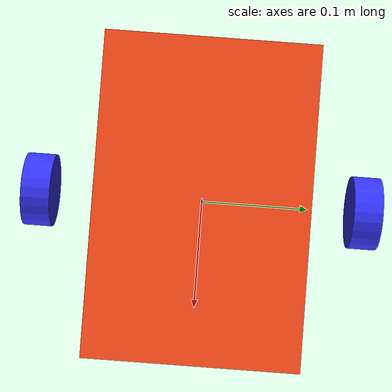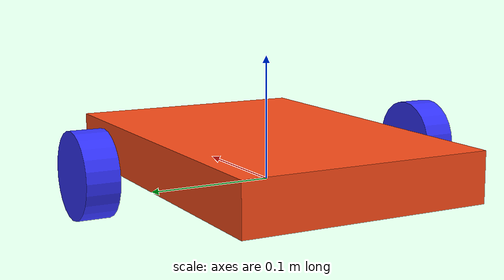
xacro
<?xml version="1.0"?>
<robot xmlns:xacro="http://www.ros.org/wiki/xacro"  name="robot">

    <xacro:arg name="use_ros2_control" default="true"/>
    <xacro:arg name="sim_mode" default="false"/>

    <xacro:include filename="robot_core.xacro" />

    <xacro:if value="$(arg use_ros2_control)">
        <xacro:include filename="ros2_control.xacro" />
    </xacro:if>
    <xacro:unless value="$(arg use_ros2_control)">
        <xacro:include filename="gazebo_control.xacro" />
    </xacro:unless>

</robot>

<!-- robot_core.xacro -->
<robot xmlns:xacro="http://www.ros.org/wiki/xacro" >

    <xacro:include filename="inertial_macros.xacro"/>
    <xacro:property name="caster_wheel_radius" value="0.032"/>
    <xacro:property name="caster_wheel_mass" value="0.01"/>
    <xacro:property name="caster_wheel_offset_x" value="0.17"/>
    <xacro:property name="caster_wheel_offset_z" value="${wheel_offset_z - wheel_radius + caster_wheel_radius}"/>
    <xacro:property name="wheel_offset_z" value="0.0"/>
    <xacro:property name="wheel_radius" value="0.0335"/>
    <xacro:property name="chassis_length" value="0.3"/>
    <xacro:property name="chassis_width" value="0.2"/>
    <xacro:property name="chassis_height" value="0.04"/>

    <material name="white">
        <color rgba="1 1 1 1" />
    </material>

    <material name="orange">
        <color rgba="1 0.3 0.1 1"/>
    </material>

    <material name="blue">
        <color rgba="0.2 0.2 1 1"/>
    </material>

    <material name="black">
        <color rgba="0 0 0 1"/>
    </material>

    <material name="red">
        <color rgba="1 0 0 1"/>
    </material>

    <!-- BASE LINK -->

    <link name="base_link">

    </link>
    <!-- BASE_FOOTPRINT LINK --> -->

   <joint name="base_footprint_joint" type="fixed">
        <parent link="base_link"/>
        <child link="base_footprint"/>
        <origin xyz="0 0 0" rpy="0 0 0"/>
    </joint> -->

    <link name="base_footprint">
    </link>

    <!-- CHASSIS LINK -->

    <joint name="chassis_joint" type="fixed">
        <parent link="base_link"/>
        <child link="chassis"/>
        <origin xyz="${-chassis_length/2} 0 ${-wheel_offset_z}"/>
    </joint>

    <link name="chassis">
        <visual>
            <origin xyz="${chassis_length/2} 0 ${chassis_height/2}"/>
            <geometry>
                <box size="${chassis_length} ${chassis_width} ${chassis_height}"/>
            </geometry>
            <material name="orange"/>
        </visual>
        <collision>
            <origin xyz="${chassis_length/2} 0 ${chassis_height/2}"/>
            <geometry>
                <box size="${chassis_length} ${chassis_width} ${chassis_height}"/>
            </geometry>
        </collision>
        <xacro:inertial_box mass="0.5" x="${chassis_length}" y="${chassis_width}" z="${chassis_height}">
            <origin xyz="${chassis_length/2} 0 ${chassis_height/2}" rpy="0 0 0"/>
        </xacro:inertial_box>
    </link>

    <gazebo reference="chassis">
        <material>Gazebo/Orange</material>
    </gazebo>

    <!-- LEFT WHEEL LINK -->

    <joint name="left_wheel_joint" type="continuous">
        <parent link="base_link"/>
        <child link="left_wheel"/>
        <origin xyz="0 0.15 0.0195" rpy="-${pi/2} 0 0" />
        <axis xyz="0 0 1"/>
    </joint>

    <link name="left_wheel">
        <visual>
            <geometry>
                <cylinder radius="0.0335" length="0.026"/>
            </geometry>
            <material name="blue"/>
        </visual>
        <collision>
            <geometry>
                <sphere radius="0.0335" />
            </geometry>
        </collision>
        <xacro:inertial_cylinder mass="0.5" length="0.0335" radius="0.026">
            <origin xyz="0 0 0" rpy="0 0 0"/>
        </xacro:inertial_cylinder>
    </link>

    <gazebo reference="left_wheel">
        <material>Gazebo/Blue</material>
    </gazebo>

    <!-- RIGHT WHEEL LINK -->

    <joint name="right_wheel_joint" type="continuous">
        <parent link="base_link"/>
        <child link="right_wheel"/>
        <origin xyz="0 -0.15 0.0195" rpy="${pi/2} 0 0" />
        <axis xyz="0 0 -1"/>
    </joint>

    <link name="right_wheel">
        <visual>
            <geometry>
                <cylinder radius="0.0335" length="0.026"/>
            </geometry>
            <material name="blue"/>
        </visual>
        <collision>
            <geometry>
                <sphere radius="0.05" />
            </geometry>
        </collision>
        <xacro:inertial_cylinder mass="0.5" length="0.0335" radius="0.026">
            <origin xyz="0 0 0" rpy="0 0 0"/>
        </xacro:inertial_cylinder>
    </link>

    <gazebo reference="right_wheel">
        <material>Gazebo/Blue</material>
    </gazebo>

     <!-- FCASTER WHEEL LINK -->

     <joint name="fcaster_wheel_joint" type="fixed">
        <parent link="chassis"/>
        <child link="Fcaster_wheel"/>
        <origin xyz="0.23 0 0"/>
    </joint>

    <link name="Fcaster_wheel">
        <visual>
            <geometry>
                <sphere radius="0.014"/>
            </geometry>
            <material name="white"/>
        </visual>
        <collision>
            <geometry>
                <sphere radius="${caster_wheel_radius}"/>
            </geometry>
        </collision>
        <xacro:inertial_sphere mass="${caster_wheel_mass}" radius="${caster_wheel_radius}">
            <origin xyz="0 0 0" rpy="0 0 0"/>
        </xacro:inertial_sphere>
    </link>

    <gazebo reference="Fcaster_wheel">
        <material>Gazebo/White</material>
        <mu1 value="0.001"/>
        <mu2 value="0.001"/>
    </gazebo>

    <!-- FCASTER WHEEL LINK -->

    <joint name="bcaster_wheel_joint" type="fixed">
        <parent link="chassis"/>
        <child link="Bcaster_wheel"/>
        <origin xyz="0.07 0 0"/>
    </joint>

    <link name="Bcaster_wheel">
        <visual>
            <geometry>
                <sphere radius="0.014"/>
            </geometry>
            <material name="white"/>
        </visual>
        <collision>
            <geometry>
                <sphere radius="${caster_wheel_radius}"/>
            </geometry>
        </collision>
        <xacro:inertial_sphere mass="${caster_wheel_mass}" radius="${caster_wheel_radius}">
            <origin xyz="0 0 0" rpy="0 0 0"/>
        </xacro:inertial_sphere>
    </link>

    <gazebo reference="Bcaster_wheel">
        <material>Gazebo/White</material>
        <mu1 value="0.001"/>
        <mu2 value="0.001"/>
    </gazebo>

</robot>

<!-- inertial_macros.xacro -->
<robot xmlns:xacro="http://www.ros.org/wiki/xacro" >

    <!-- Specify some standard inertial calculations https://en.wikipedia.org/wiki/List_of_moments_of_inertia -->
    <!-- These make use of xacro's mathematical functionality -->

   <xacro:macro name="inertial_sphere" params="mass radius *origin">
        <inertial>
            <xacro:insert_block name="origin"/>
            <mass value="${mass}" />
            <inertia ixx="${(2/5) * mass * (radius*radius)}" ixy="0.0" ixz="0.0"
                    iyy="${(2/5) * mass * (radius*radius)}" iyz="0.0"
                    izz="${(2/5) * mass * (radius*radius)}" />
        </inertial>
    </xacro:macro>

    <xacro:macro name="inertial_box" params="mass x y z *origin">
        <inertial>
            <xacro:insert_block name="origin"/>
            <mass value="${mass}" />
            <inertia ixx="${(1/12) * mass * (y*y+z*z)}" ixy="0.0" ixz="0.0"
                    iyy="${(1/12) * mass * (x*x+z*z)}" iyz="0.0"
                    izz="${(1/12) * mass * (x*x+y*y)}" />
        </inertial>
    </xacro:macro>

    <xacro:macro name="inertial_cylinder" params="mass length radius *origin">
        <inertial>
            <xacro:insert_block name="origin"/>
            <mass value="${mass}" />
            <inertia ixx="${(1/12) * mass * (3*radius*radius + length*length)}" ixy="0.0" ixz="0.0"
                    iyy="${(1/12) * mass * (3*radius*radius + length*length)}" iyz="0.0"
                    izz="${(1/2) * mass * (radius*radius)}" />
        </inertial>
    </xacro:macro>

</robot>
